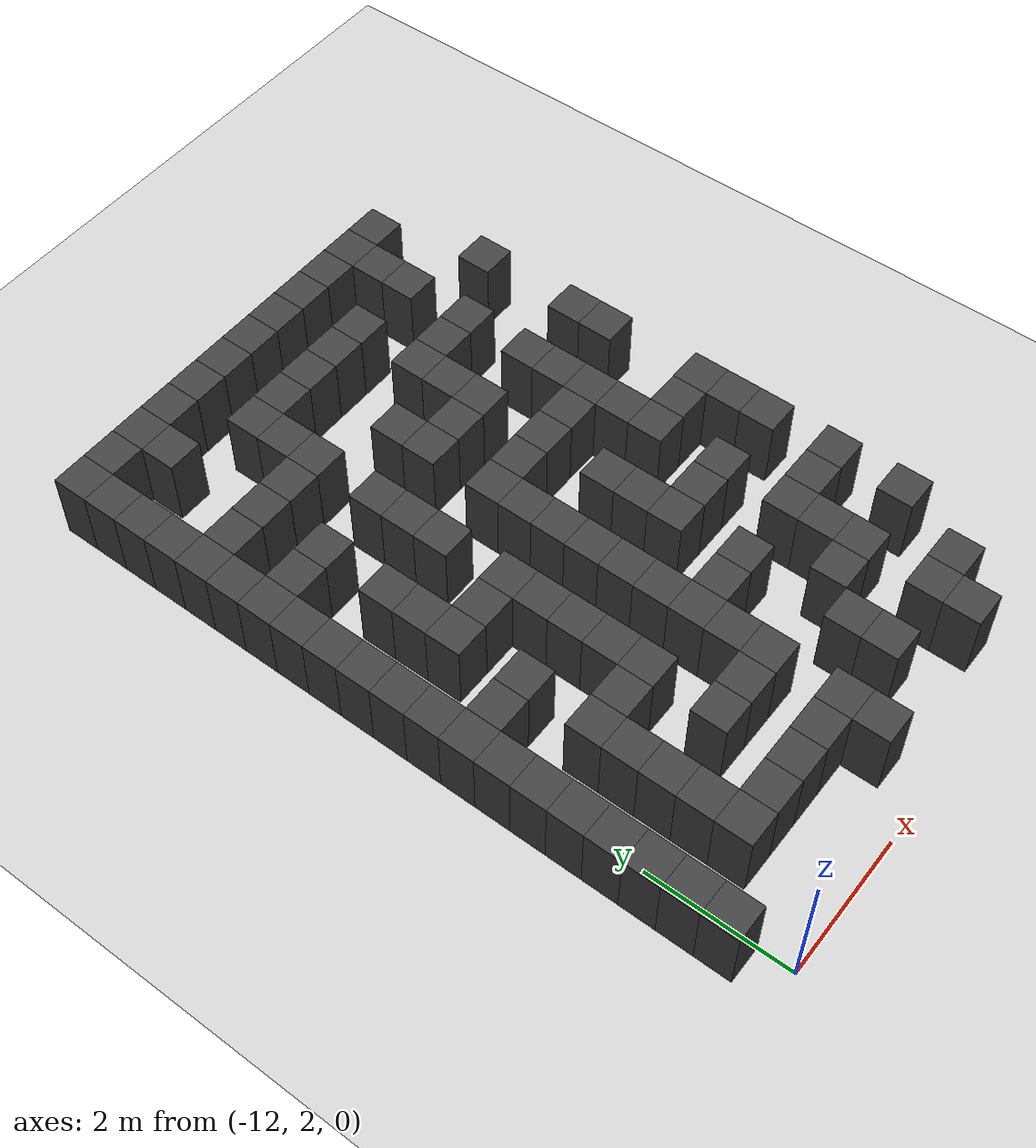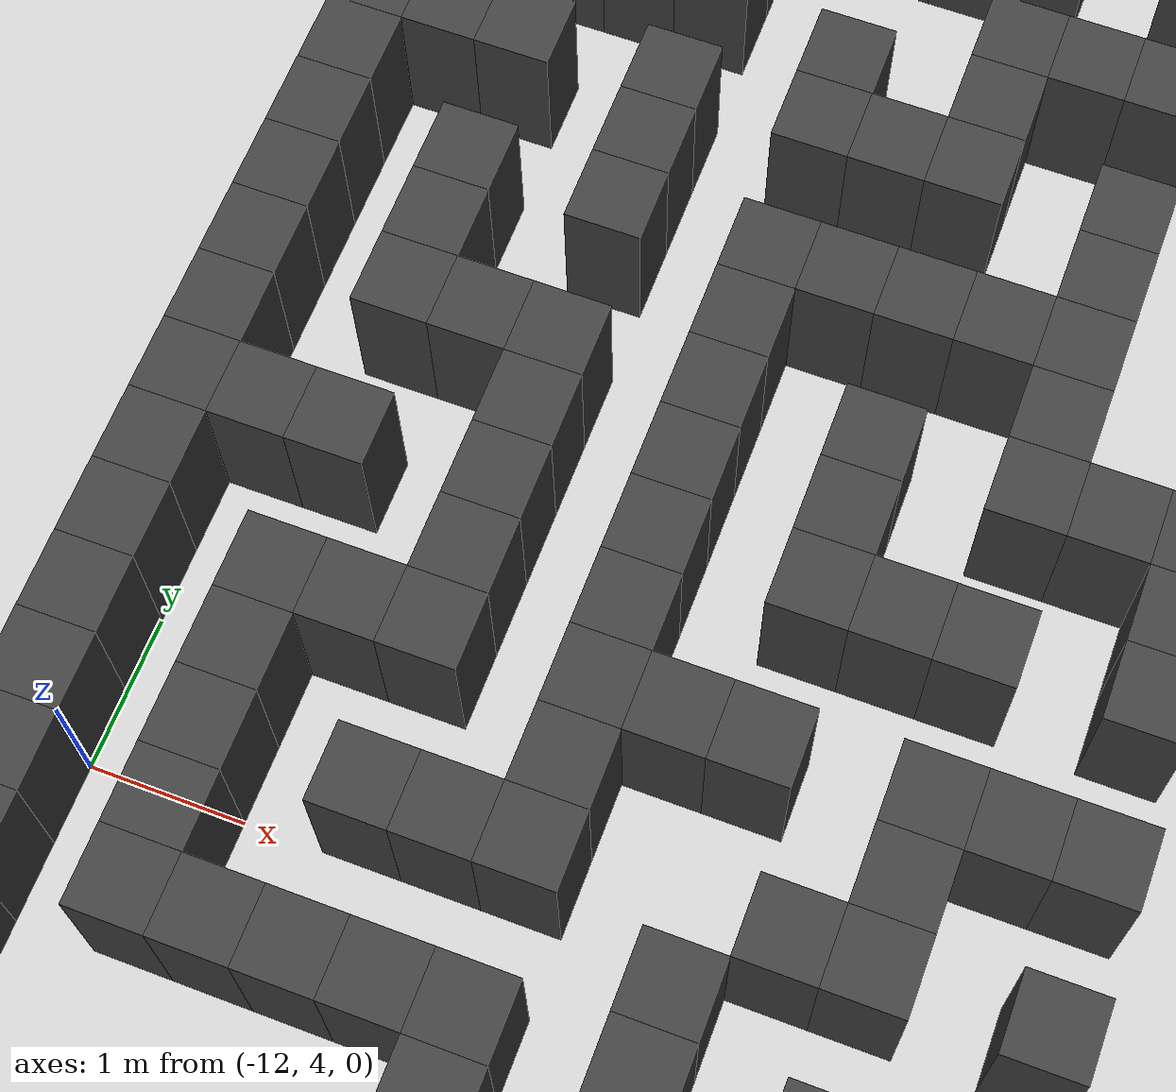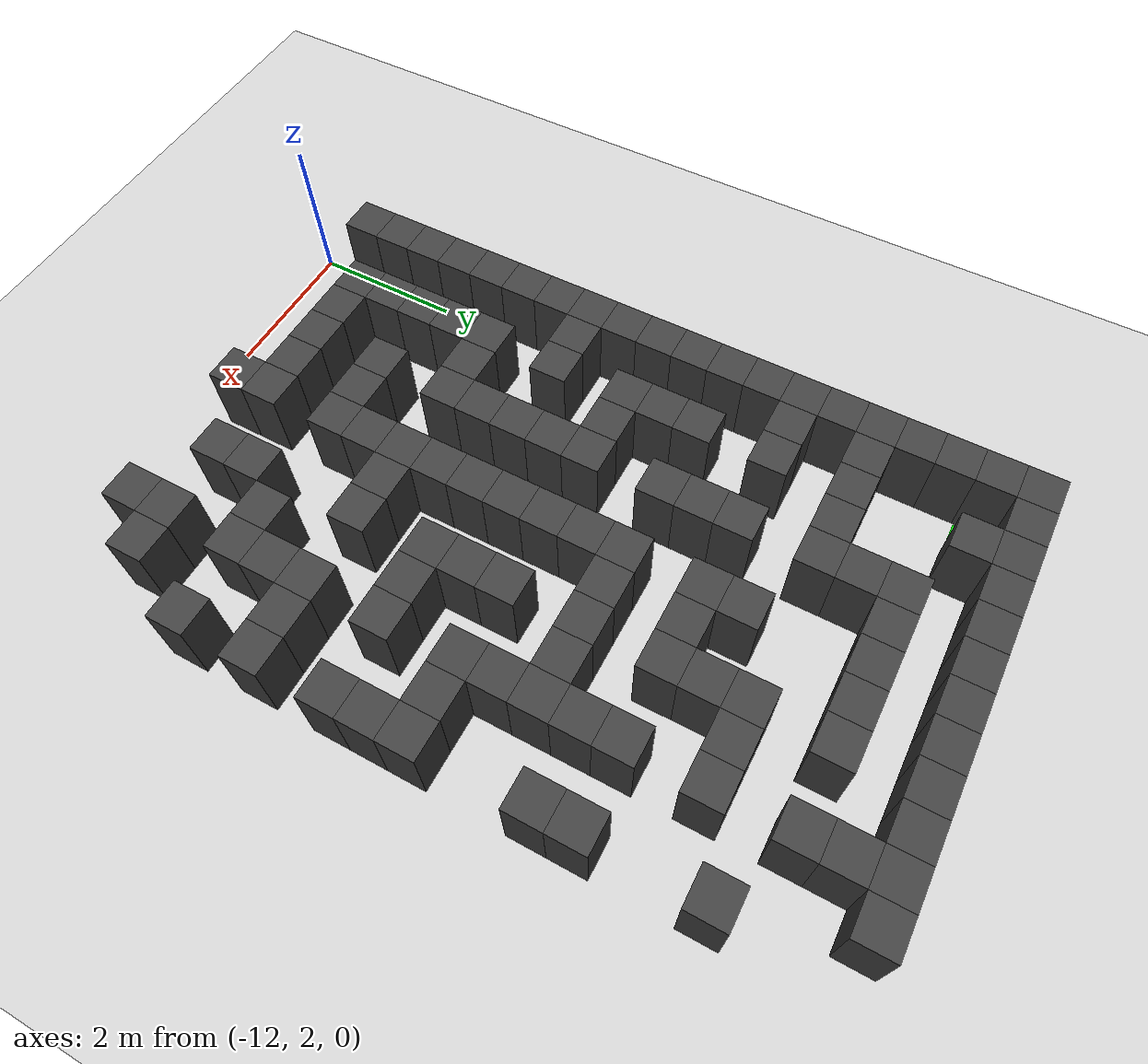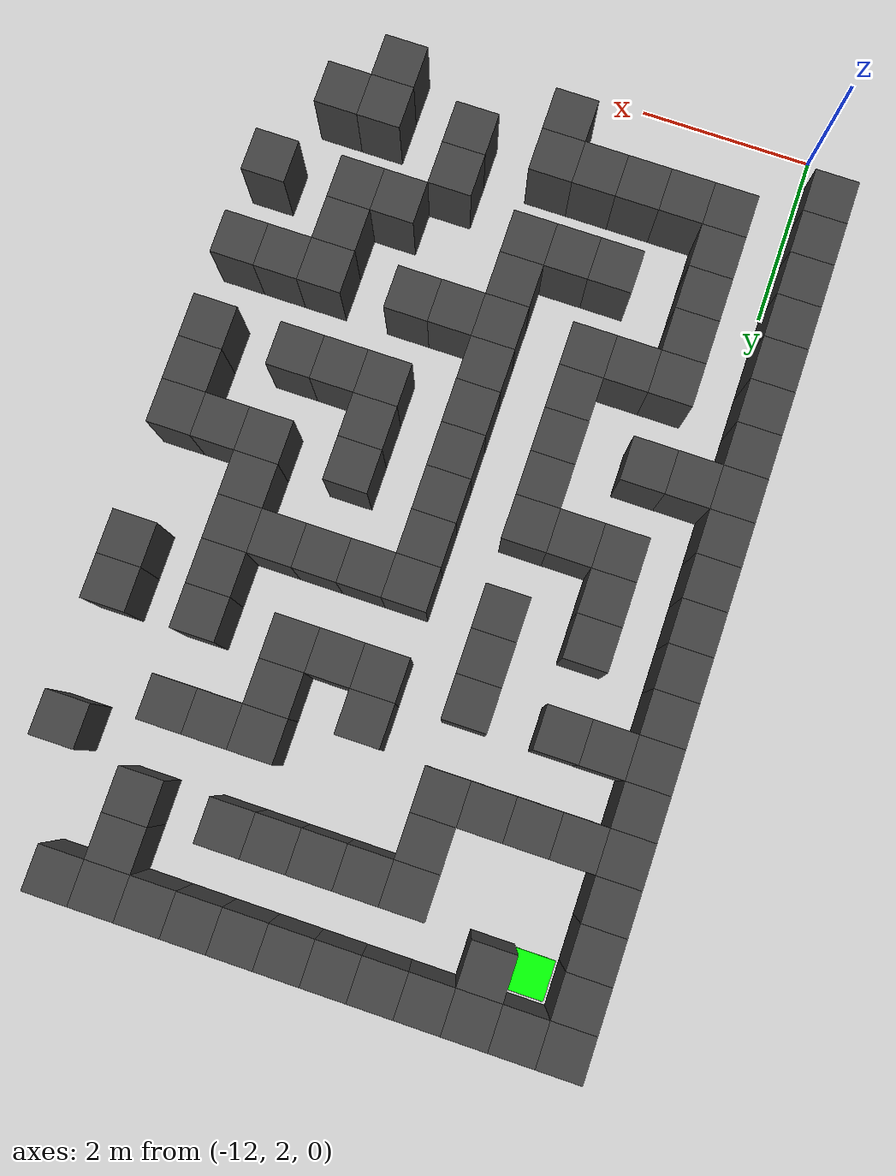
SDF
<sdf version="1.7">
 <world name="map_16603">
  <model name="ground_plane">
   <static>true</static>
   <link name="link">
    <collision name="collision">
     <geometry><plane><normal>0 0 1</normal><size>200 200</size></plane></geometry>
    </collision>
    <visual name="visual">
     <geometry><plane><normal>0 0 1</normal><size>200 200</size></plane></geometry>
     <material><ambient>0.8 0.8 0.8 1</ambient><diffuse>0.8 0.8 0.8 1</diffuse></material>
    </visual>
   </link>
  </model>
  <model name="maze_environment">
   <static>true</static>
   <link name="wall_0">
    <pose>-12.250 12.250 0.500 0 0 0</pose>
    <collision name="col"><geometry><box><size>0.5 0.5 1.0</size></box></geometry></collision>
    <visual name="vis">
     <geometry><box><size>0.5 0.5 1.0</size></box></geometry>
     <material><ambient>0.15 0.15 0.15 1</ambient><diffuse>0.25 0.25 0.25 1</diffuse></material>
    </visual>
   </link>
   <link name="wall_1">
    <pose>-11.750 12.250 0.500 0 0 0</pose>
    <collision name="col"><geometry><box><size>0.5 0.5 1.0</size></box></geometry></collision>
    <visual name="vis">
     <geometry><box><size>0.5 0.5 1.0</size></box></geometry>
     <material><ambient>0.15 0.15 0.15 1</ambient><diffuse>0.25 0.25 0.25 1</diffuse></material>
    </visual>
   </link>
   <link name="wall_2">
    <pose>-11.250 12.250 0.500 0 0 0</pose>
    <collision name="col"><geometry><box><size>0.5 0.5 1.0</size></box></geometry></collision>
    <visual name="vis">
     <geometry><box><size>0.5 0.5 1.0</size></box></geometry>
     <material><ambient>0.15 0.15 0.15 1</ambient><diffuse>0.25 0.25 0.25 1</diffuse></material>
    </visual>
   </link>
   <link name="wall_3">
    <pose>-10.750 12.250 0.500 0 0 0</pose>
    <collision name="col"><geometry><box><size>0.5 0.5 1.0</size></box></geometry></collision>
    <visual name="vis">
     <geometry><box><size>0.5 0.5 1.0</size></box></geometry>
     <material><ambient>0.15 0.15 0.15 1</ambient><diffuse>0.25 0.25 0.25 1</diffuse></material>
    </visual>
   </link>
   <link name="wall_4">
    <pose>-10.250 12.250 0.500 0 0 0</pose>
    <collision name="col"><geometry><box><size>0.5 0.5 1.0</size></box></geometry></collision>
    <visual name="vis">
     <geometry><box><size>0.5 0.5 1.0</size></box></geometry>
     <material><ambient>0.15 0.15 0.15 1</ambient><diffuse>0.25 0.25 0.25 1</diffuse></material>
    </visual>
   </link>
   <link name="wall_5">
    <pose>-9.750 12.250 0.500 0 0 0</pose>
    <collision name="col"><geometry><box><size>0.5 0.5 1.0</size></box></geometry></collision>
    <visual name="vis">
     <geometry><box><size>0.5 0.5 1.0</size></box></geometry>
     <material><ambient>0.15 0.15 0.15 1</ambient><diffuse>0.25 0.25 0.25 1</diffuse></material>
    </visual>
   </link>
   <link name="wall_6">
    <pose>-9.250 12.250 0.500 0 0 0</pose>
    <collision name="col"><geometry><box><size>0.5 0.5 1.0</size></box></geometry></collision>
    <visual name="vis">
     <geometry><box><size>0.5 0.5 1.0</size></box></geometry>
     <material><ambient>0.15 0.15 0.15 1</ambient><diffuse>0.25 0.25 0.25 1</diffuse></material>
    </visual>
   </link>
   <link name="wall_7">
    <pose>-8.750 12.250 0.500 0 0 0</pose>
    <collision name="col"><geometry><box><size>0.5 0.5 1.0</size></box></geometry></collision>
    <visual name="vis">
     <geometry><box><size>0.5 0.5 1.0</size></box></geometry>
     <material><ambient>0.15 0.15 0.15 1</ambient><diffuse>0.25 0.25 0.25 1</diffuse></material>
    </visual>
   </link>
   <link name="wall_8">
    <pose>-8.250 12.250 0.500 0 0 0</pose>
    <collision name="col"><geometry><box><size>0.5 0.5 1.0</size></box></geometry></collision>
    <visual name="vis">
     <geometry><box><size>0.5 0.5 1.0</size></box></geometry>
     <material><ambient>0.15 0.15 0.15 1</ambient><diffuse>0.25 0.25 0.25 1</diffuse></material>
    </visual>
   </link>
   <link name="wall_9">
    <pose>-7.750 12.250 0.500 0 0 0</pose>
    <collision name="col"><geometry><box><size>0.5 0.5 1.0</size></box></geometry></collision>
    <visual name="vis">
     <geometry><box><size>0.5 0.5 1.0</size></box></geometry>
     <material><ambient>0.15 0.15 0.15 1</ambient><diffuse>0.25 0.25 0.25 1</diffuse></material>
    </visual>
   </link>
   <link name="wall_10">
    <pose>-7.250 12.250 0.500 0 0 0</pose>
    <collision name="col"><geometry><box><size>0.5 0.5 1.0</size></box></geometry></collision>
    <visual name="vis">
     <geometry><box><size>0.5 0.5 1.0</size></box></geometry>
     <material><ambient>0.15 0.15 0.15 1</ambient><diffuse>0.25 0.25 0.25 1</diffuse></material>
    </visual>
   </link>
   <link name="wall_11">
    <pose>-6.750 12.250 0.500 0 0 0</pose>
    <collision name="col"><geometry><box><size>0.5 0.5 1.0</size></box></geometry></collision>
    <visual name="vis">
     <geometry><box><size>0.5 0.5 1.0</size></box></geometry>
     <material><ambient>0.15 0.15 0.15 1</ambient><diffuse>0.25 0.25 0.25 1</diffuse></material>
    </visual>
   </link>
   <link name="wall_50">
    <pose>-12.250 11.750 0.500 0 0 0</pose>
    <collision name="col"><geometry><box><size>0.5 0.5 1.0</size></box></geometry></collision>
    <visual name="vis">
     <geometry><box><size>0.5 0.5 1.0</size></box></geometry>
     <material><ambient>0.15 0.15 0.15 1</ambient><diffuse>0.25 0.25 0.25 1</diffuse></material>
    </visual>
   </link>
   <link name="wall_51">
    <pose>-11.250 11.750 0.500 0 0 0</pose>
    <collision name="col"><geometry><box><size>0.5 0.5 1.0</size></box></geometry></collision>
    <visual name="vis">
     <geometry><box><size>0.5 0.5 1.0</size></box></geometry>
     <material><ambient>0.15 0.15 0.15 1</ambient><diffuse>0.25 0.25 0.25 1</diffuse></material>
    </visual>
   </link>
   <link name="wall_52">
    <pose>-7.250 11.750 0.500 0 0 0</pose>
    <collision name="col"><geometry><box><size>0.5 0.5 1.0</size></box></geometry></collision>
    <visual name="vis">
     <geometry><box><size>0.5 0.5 1.0</size></box></geometry>
     <material><ambient>0.15 0.15 0.15 1</ambient><diffuse>0.25 0.25 0.25 1</diffuse></material>
    </visual>
   </link>
   <link name="wall_58">
    <pose>-12.250 11.250 0.500 0 0 0</pose>
    <collision name="col"><geometry><box><size>0.5 0.5 1.0</size></box></geometry></collision>
    <visual name="vis">
     <geometry><box><size>0.5 0.5 1.0</size></box></geometry>
     <material><ambient>0.15 0.15 0.15 1</ambient><diffuse>0.25 0.25 0.25 1</diffuse></material>
    </visual>
   </link>
   <link name="wall_59">
    <pose>-10.250 11.250 0.500 0 0 0</pose>
    <collision name="col"><geometry><box><size>0.5 0.5 1.0</size></box></geometry></collision>
    <visual name="vis">
     <geometry><box><size>0.5 0.5 1.0</size></box></geometry>
     <material><ambient>0.15 0.15 0.15 1</ambient><diffuse>0.25 0.25 0.25 1</diffuse></material>
    </visual>
   </link>
   <link name="wall_60">
    <pose>-9.750 11.250 0.500 0 0 0</pose>
    <collision name="col"><geometry><box><size>0.5 0.5 1.0</size></box></geometry></collision>
    <visual name="vis">
     <geometry><box><size>0.5 0.5 1.0</size></box></geometry>
     <material><ambient>0.15 0.15 0.15 1</ambient><diffuse>0.25 0.25 0.25 1</diffuse></material>
    </visual>
   </link>
   <link name="wall_61">
    <pose>-9.250 11.250 0.500 0 0 0</pose>
    <collision name="col"><geometry><box><size>0.5 0.5 1.0</size></box></geometry></collision>
    <visual name="vis">
     <geometry><box><size>0.5 0.5 1.0</size></box></geometry>
     <material><ambient>0.15 0.15 0.15 1</ambient><diffuse>0.25 0.25 0.25 1</diffuse></material>
    </visual>
   </link>
   <link name="wall_62">
    <pose>-8.750 11.250 0.500 0 0 0</pose>
    <collision name="col"><geometry><box><size>0.5 0.5 1.0</size></box></geometry></collision>
    <visual name="vis">
     <geometry><box><size>0.5 0.5 1.0</size></box></geometry>
     <material><ambient>0.15 0.15 0.15 1</ambient><diffuse>0.25 0.25 0.25 1</diffuse></material>
    </visual>
   </link>
   <link name="wall_63">
    <pose>-8.250 11.250 0.500 0 0 0</pose>
    <collision name="col"><geometry><box><size>0.5 0.5 1.0</size></box></geometry></collision>
    <visual name="vis">
     <geometry><box><size>0.5 0.5 1.0</size></box></geometry>
     <material><ambient>0.15 0.15 0.15 1</ambient><diffuse>0.25 0.25 0.25 1</diffuse></material>
    </visual>
   </link>
   <link name="wall_64">
    <pose>-7.250 11.250 0.500 0 0 0</pose>
    <collision name="col"><geometry><box><size>0.5 0.5 1.0</size></box></geometry></collision>
    <visual name="vis">
     <geometry><box><size>0.5 0.5 1.0</size></box></geometry>
     <material><ambient>0.15 0.15 0.15 1</ambient><diffuse>0.25 0.25 0.25 1</diffuse></material>
    </visual>
   </link>
   <link name="wall_94">
    <pose>-12.250 10.750 0.500 0 0 0</pose>
    <collision name="col"><geometry><box><size>0.5 0.5 1.0</size></box></geometry></collision>
    <visual name="vis">
     <geometry><box><size>0.5 0.5 1.0</size></box></geometry>
     <material><ambient>0.15 0.15 0.15 1</ambient><diffuse>0.25 0.25 0.25 1</diffuse></material>
    </visual>
   </link>
   <link name="wall_95">
    <pose>-10.250 10.750 0.500 0 0 0</pose>
    <collision name="col"><geometry><box><size>0.5 0.5 1.0</size></box></geometry></collision>
    <visual name="vis">
     <geometry><box><size>0.5 0.5 1.0</size></box></geometry>
     <material><ambient>0.15 0.15 0.15 1</ambient><diffuse>0.25 0.25 0.25 1</diffuse></material>
    </visual>
   </link>
   <link name="wall_96">
    <pose>-6.250 10.750 0.500 0 0 0</pose>
    <collision name="col"><geometry><box><size>0.5 0.5 1.0</size></box></geometry></collision>
    <visual name="vis">
     <geometry><box><size>0.5 0.5 1.0</size></box></geometry>
     <material><ambient>0.15 0.15 0.15 1</ambient><diffuse>0.25 0.25 0.25 1</diffuse></material>
    </visual>
   </link>
   <link name="wall_106">
    <pose>-12.250 10.250 0.500 0 0 0</pose>
    <collision name="col"><geometry><box><size>0.5 0.5 1.0</size></box></geometry></collision>
    <visual name="vis">
     <geometry><box><size>0.5 0.5 1.0</size></box></geometry>
     <material><ambient>0.15 0.15 0.15 1</ambient><diffuse>0.25 0.25 0.25 1</diffuse></material>
    </visual>
   </link>
   <link name="wall_107">
    <pose>-11.750 10.250 0.500 0 0 0</pose>
    <collision name="col"><geometry><box><size>0.5 0.5 1.0</size></box></geometry></collision>
    <visual name="vis">
     <geometry><box><size>0.5 0.5 1.0</size></box></geometry>
     <material><ambient>0.15 0.15 0.15 1</ambient><diffuse>0.25 0.25 0.25 1</diffuse></material>
    </visual>
   </link>
   <link name="wall_108">
    <pose>-11.250 10.250 0.500 0 0 0</pose>
    <collision name="col"><geometry><box><size>0.5 0.5 1.0</size></box></geometry></collision>
    <visual name="vis">
     <geometry><box><size>0.5 0.5 1.0</size></box></geometry>
     <material><ambient>0.15 0.15 0.15 1</ambient><diffuse>0.25 0.25 0.25 1</diffuse></material>
    </visual>
   </link>
   <link name="wall_109">
    <pose>-10.750 10.250 0.500 0 0 0</pose>
    <collision name="col"><geometry><box><size>0.5 0.5 1.0</size></box></geometry></collision>
    <visual name="vis">
     <geometry><box><size>0.5 0.5 1.0</size></box></geometry>
     <material><ambient>0.15 0.15 0.15 1</ambient><diffuse>0.25 0.25 0.25 1</diffuse></material>
    </visual>
   </link>
   <link name="wall_110">
    <pose>-10.250 10.250 0.500 0 0 0</pose>
    <collision name="col"><geometry><box><size>0.5 0.5 1.0</size></box></geometry></collision>
    <visual name="vis">
     <geometry><box><size>0.5 0.5 1.0</size></box></geometry>
     <material><ambient>0.15 0.15 0.15 1</ambient><diffuse>0.25 0.25 0.25 1</diffuse></material>
    </visual>
   </link>
   <link name="wall_111">
    <pose>-8.250 10.250 0.500 0 0 0</pose>
    <collision name="col"><geometry><box><size>0.5 0.5 1.0</size></box></geometry></collision>
    <visual name="vis">
     <geometry><box><size>0.5 0.5 1.0</size></box></geometry>
     <material><ambient>0.15 0.15 0.15 1</ambient><diffuse>0.25 0.25 0.25 1</diffuse></material>
    </visual>
   </link>
   <link name="wall_112">
    <pose>-7.750 10.250 0.500 0 0 0</pose>
    <collision name="col"><geometry><box><size>0.5 0.5 1.0</size></box></geometry></collision>
    <visual name="vis">
     <geometry><box><size>0.5 0.5 1.0</size></box></geometry>
     <material><ambient>0.15 0.15 0.15 1</ambient><diffuse>0.25 0.25 0.25 1</diffuse></material>
    </visual>
   </link>
   <link name="wall_113">
    <pose>-7.250 10.250 0.500 0 0 0</pose>
    <collision name="col"><geometry><box><size>0.5 0.5 1.0</size></box></geometry></collision>
    <visual name="vis">
     <geometry><box><size>0.5 0.5 1.0</size></box></geometry>
     <material><ambient>0.15 0.15 0.15 1</ambient><diffuse>0.25 0.25 0.25 1</diffuse></material>
    </visual>
   </link>
   <link name="wall_138">
    <pose>-12.250 9.750 0.500 0 0 0</pose>
    <collision name="col"><geometry><box><size>0.5 0.5 1.0</size></box></geometry></collision>
    <visual name="vis">
     <geometry><box><size>0.5 0.5 1.0</size></box></geometry>
     <material><ambient>0.15 0.15 0.15 1</ambient><diffuse>0.25 0.25 0.25 1</diffuse></material>
    </visual>
   </link>
   <link name="wall_139">
    <pose>-9.250 9.750 0.500 0 0 0</pose>
    <collision name="col"><geometry><box><size>0.5 0.5 1.0</size></box></geometry></collision>
    <visual name="vis">
     <geometry><box><size>0.5 0.5 1.0</size></box></geometry>
     <material><ambient>0.15 0.15 0.15 1</ambient><diffuse>0.25 0.25 0.25 1</diffuse></material>
    </visual>
   </link>
   <link name="wall_140">
    <pose>-8.250 9.750 0.500 0 0 0</pose>
    <collision name="col"><geometry><box><size>0.5 0.5 1.0</size></box></geometry></collision>
    <visual name="vis">
     <geometry><box><size>0.5 0.5 1.0</size></box></geometry>
     <material><ambient>0.15 0.15 0.15 1</ambient><diffuse>0.25 0.25 0.25 1</diffuse></material>
    </visual>
   </link>
   <link name="wall_152">
    <pose>-12.250 9.250 0.500 0 0 0</pose>
    <collision name="col"><geometry><box><size>0.5 0.5 1.0</size></box></geometry></collision>
    <visual name="vis">
     <geometry><box><size>0.5 0.5 1.0</size></box></geometry>
     <material><ambient>0.15 0.15 0.15 1</ambient><diffuse>0.25 0.25 0.25 1</diffuse></material>
    </visual>
   </link>
   <link name="wall_153">
    <pose>-11.750 9.250 0.500 0 0 0</pose>
    <collision name="col"><geometry><box><size>0.5 0.5 1.0</size></box></geometry></collision>
    <visual name="vis">
     <geometry><box><size>0.5 0.5 1.0</size></box></geometry>
     <material><ambient>0.15 0.15 0.15 1</ambient><diffuse>0.25 0.25 0.25 1</diffuse></material>
    </visual>
   </link>
   <link name="wall_154">
    <pose>-11.250 9.250 0.500 0 0 0</pose>
    <collision name="col"><geometry><box><size>0.5 0.5 1.0</size></box></geometry></collision>
    <visual name="vis">
     <geometry><box><size>0.5 0.5 1.0</size></box></geometry>
     <material><ambient>0.15 0.15 0.15 1</ambient><diffuse>0.25 0.25 0.25 1</diffuse></material>
    </visual>
   </link>
   <link name="wall_155">
    <pose>-10.250 9.250 0.500 0 0 0</pose>
    <collision name="col"><geometry><box><size>0.5 0.5 1.0</size></box></geometry></collision>
    <visual name="vis">
     <geometry><box><size>0.5 0.5 1.0</size></box></geometry>
     <material><ambient>0.15 0.15 0.15 1</ambient><diffuse>0.25 0.25 0.25 1</diffuse></material>
    </visual>
   </link>
   <link name="wall_156">
    <pose>-9.250 9.250 0.500 0 0 0</pose>
    <collision name="col"><geometry><box><size>0.5 0.5 1.0</size></box></geometry></collision>
    <visual name="vis">
     <geometry><box><size>0.5 0.5 1.0</size></box></geometry>
     <material><ambient>0.15 0.15 0.15 1</ambient><diffuse>0.25 0.25 0.25 1</diffuse></material>
    </visual>
   </link>
   <link name="wall_157">
    <pose>-8.750 9.250 0.500 0 0 0</pose>
    <collision name="col"><geometry><box><size>0.5 0.5 1.0</size></box></geometry></collision>
    <visual name="vis">
     <geometry><box><size>0.5 0.5 1.0</size></box></geometry>
     <material><ambient>0.15 0.15 0.15 1</ambient><diffuse>0.25 0.25 0.25 1</diffuse></material>
    </visual>
   </link>
   <link name="wall_158">
    <pose>-8.250 9.250 0.500 0 0 0</pose>
    <collision name="col"><geometry><box><size>0.5 0.5 1.0</size></box></geometry></collision>
    <visual name="vis">
     <geometry><box><size>0.5 0.5 1.0</size></box></geometry>
     <material><ambient>0.15 0.15 0.15 1</ambient><diffuse>0.25 0.25 0.25 1</diffuse></material>
    </visual>
   </link>
   <link name="wall_159">
    <pose>-7.250 9.250 0.500 0 0 0</pose>
    <collision name="col"><geometry><box><size>0.5 0.5 1.0</size></box></geometry></collision>
    <visual name="vis">
     <geometry><box><size>0.5 0.5 1.0</size></box></geometry>
     <material><ambient>0.15 0.15 0.15 1</ambient><diffuse>0.25 0.25 0.25 1</diffuse></material>
    </visual>
   </link>
   <link name="wall_160">
    <pose>-6.250 9.250 0.500 0 0 0</pose>
    <collision name="col"><geometry><box><size>0.5 0.5 1.0</size></box></geometry></collision>
    <visual name="vis">
     <geometry><box><size>0.5 0.5 1.0</size></box></geometry>
     <material><ambient>0.15 0.15 0.15 1</ambient><diffuse>0.25 0.25 0.25 1</diffuse></material>
    </visual>
   </link>
   <link name="wall_184">
    <pose>-12.250 8.750 0.500 0 0 0</pose>
    <collision name="col"><geometry><box><size>0.5 0.5 1.0</size></box></geometry></collision>
    <visual name="vis">
     <geometry><box><size>0.5 0.5 1.0</size></box></geometry>
     <material><ambient>0.15 0.15 0.15 1</ambient><diffuse>0.25 0.25 0.25 1</diffuse></material>
    </visual>
   </link>
   <link name="wall_185">
    <pose>-10.250 8.750 0.500 0 0 0</pose>
    <collision name="col"><geometry><box><size>0.5 0.5 1.0</size></box></geometry></collision>
    <visual name="vis">
     <geometry><box><size>0.5 0.5 1.0</size></box></geometry>
     <material><ambient>0.15 0.15 0.15 1</ambient><diffuse>0.25 0.25 0.25 1</diffuse></material>
    </visual>
   </link>
   <link name="wall_186">
    <pose>-7.250 8.750 0.500 0 0 0</pose>
    <collision name="col"><geometry><box><size>0.5 0.5 1.0</size></box></geometry></collision>
    <visual name="vis">
     <geometry><box><size>0.5 0.5 1.0</size></box></geometry>
     <material><ambient>0.15 0.15 0.15 1</ambient><diffuse>0.25 0.25 0.25 1</diffuse></material>
    </visual>
   </link>
   <link name="wall_187">
    <pose>-6.250 8.750 0.500 0 0 0</pose>
    <collision name="col"><geometry><box><size>0.5 0.5 1.0</size></box></geometry></collision>
    <visual name="vis">
     <geometry><box><size>0.5 0.5 1.0</size></box></geometry>
     <material><ambient>0.15 0.15 0.15 1</ambient><diffuse>0.25 0.25 0.25 1</diffuse></material>
    </visual>
   </link>
   <link name="wall_201">
    <pose>-12.250 8.250 0.500 0 0 0</pose>
    <collision name="col"><geometry><box><size>0.5 0.5 1.0</size></box></geometry></collision>
    <visual name="vis">
     <geometry><box><size>0.5 0.5 1.0</size></box></geometry>
     <material><ambient>0.15 0.15 0.15 1</ambient><diffuse>0.25 0.25 0.25 1</diffuse></material>
    </visual>
   </link>
   <link name="wall_202">
    <pose>-11.250 8.250 0.500 0 0 0</pose>
    <collision name="col"><geometry><box><size>0.5 0.5 1.0</size></box></geometry></collision>
    <visual name="vis">
     <geometry><box><size>0.5 0.5 1.0</size></box></geometry>
     <material><ambient>0.15 0.15 0.15 1</ambient><diffuse>0.25 0.25 0.25 1</diffuse></material>
    </visual>
   </link>
   <link name="wall_203">
    <pose>-10.250 8.250 0.500 0 0 0</pose>
    <collision name="col"><geometry><box><size>0.5 0.5 1.0</size></box></geometry></collision>
    <visual name="vis">
     <geometry><box><size>0.5 0.5 1.0</size></box></geometry>
     <material><ambient>0.15 0.15 0.15 1</ambient><diffuse>0.25 0.25 0.25 1</diffuse></material>
    </visual>
   </link>
   <link name="wall_204">
    <pose>-9.250 8.250 0.500 0 0 0</pose>
    <collision name="col"><geometry><box><size>0.5 0.5 1.0</size></box></geometry></collision>
    <visual name="vis">
     <geometry><box><size>0.5 0.5 1.0</size></box></geometry>
     <material><ambient>0.15 0.15 0.15 1</ambient><diffuse>0.25 0.25 0.25 1</diffuse></material>
    </visual>
   </link>
   <link name="wall_205">
    <pose>-8.750 8.250 0.500 0 0 0</pose>
    <collision name="col"><geometry><box><size>0.5 0.5 1.0</size></box></geometry></collision>
    <visual name="vis">
     <geometry><box><size>0.5 0.5 1.0</size></box></geometry>
     <material><ambient>0.15 0.15 0.15 1</ambient><diffuse>0.25 0.25 0.25 1</diffuse></material>
    </visual>
   </link>
   <link name="wall_206">
    <pose>-8.250 8.250 0.500 0 0 0</pose>
    <collision name="col"><geometry><box><size>0.5 0.5 1.0</size></box></geometry></collision>
    <visual name="vis">
     <geometry><box><size>0.5 0.5 1.0</size></box></geometry>
     <material><ambient>0.15 0.15 0.15 1</ambient><diffuse>0.25 0.25 0.25 1</diffuse></material>
    </visual>
   </link>
   <link name="wall_207">
    <pose>-7.750 8.250 0.500 0 0 0</pose>
    <collision name="col"><geometry><box><size>0.5 0.5 1.0</size></box></geometry></collision>
    <visual name="vis">
     <geometry><box><size>0.5 0.5 1.0</size></box></geometry>
     <material><ambient>0.15 0.15 0.15 1</ambient><diffuse>0.25 0.25 0.25 1</diffuse></material>
    </visual>
   </link>
   <link name="wall_208">
    <pose>-7.250 8.250 0.500 0 0 0</pose>
    <collision name="col"><geometry><box><size>0.5 0.5 1.0</size></box></geometry></collision>
    <visual name="vis">
     <geometry><box><size>0.5 0.5 1.0</size></box></geometry>
     <material><ambient>0.15 0.15 0.15 1</ambient><diffuse>0.25 0.25 0.25 1</diffuse></material>
    </visual>
   </link>
   <link name="wall_230">
    <pose>-12.250 7.750 0.500 0 0 0</pose>
    <collision name="col"><geometry><box><size>0.5 0.5 1.0</size></box></geometry></collision>
    <visual name="vis">
     <geometry><box><size>0.5 0.5 1.0</size></box></geometry>
     <material><ambient>0.15 0.15 0.15 1</ambient><diffuse>0.25 0.25 0.25 1</diffuse></material>
    </visual>
   </link>
   <link name="wall_231">
    <pose>-11.250 7.750 0.500 0 0 0</pose>
    <collision name="col"><geometry><box><size>0.5 0.5 1.0</size></box></geometry></collision>
    <visual name="vis">
     <geometry><box><size>0.5 0.5 1.0</size></box></geometry>
     <material><ambient>0.15 0.15 0.15 1</ambient><diffuse>0.25 0.25 0.25 1</diffuse></material>
    </visual>
   </link>
   <link name="wall_232">
    <pose>-9.250 7.750 0.500 0 0 0</pose>
    <collision name="col"><geometry><box><size>0.5 0.5 1.0</size></box></geometry></collision>
    <visual name="vis">
     <geometry><box><size>0.5 0.5 1.0</size></box></geometry>
     <material><ambient>0.15 0.15 0.15 1</ambient><diffuse>0.25 0.25 0.25 1</diffuse></material>
    </visual>
   </link>
   <link name="wall_233">
    <pose>-7.250 7.750 0.500 0 0 0</pose>
    <collision name="col"><geometry><box><size>0.5 0.5 1.0</size></box></geometry></collision>
    <visual name="vis">
     <geometry><box><size>0.5 0.5 1.0</size></box></geometry>
     <material><ambient>0.15 0.15 0.15 1</ambient><diffuse>0.25 0.25 0.25 1</diffuse></material>
    </visual>
   </link>
   <link name="wall_247">
    <pose>-12.250 7.250 0.500 0 0 0</pose>
    <collision name="col"><geometry><box><size>0.5 0.5 1.0</size></box></geometry></collision>
    <visual name="vis">
     <geometry><box><size>0.5 0.5 1.0</size></box></geometry>
     <material><ambient>0.15 0.15 0.15 1</ambient><diffuse>0.25 0.25 0.25 1</diffuse></material>
    </visual>
   </link>
   <link name="wall_248">
    <pose>-11.250 7.250 0.500 0 0 0</pose>
    <collision name="col"><geometry><box><size>0.5 0.5 1.0</size></box></geometry></collision>
    <visual name="vis">
     <geometry><box><size>0.5 0.5 1.0</size></box></geometry>
     <material><ambient>0.15 0.15 0.15 1</ambient><diffuse>0.25 0.25 0.25 1</diffuse></material>
    </visual>
   </link>
   <link name="wall_249">
    <pose>-10.750 7.250 0.500 0 0 0</pose>
    <collision name="col"><geometry><box><size>0.5 0.5 1.0</size></box></geometry></collision>
    <visual name="vis">
     <geometry><box><size>0.5 0.5 1.0</size></box></geometry>
     <material><ambient>0.15 0.15 0.15 1</ambient><diffuse>0.25 0.25 0.25 1</diffuse></material>
    </visual>
   </link>
   <link name="wall_250">
    <pose>-10.250 7.250 0.500 0 0 0</pose>
    <collision name="col"><geometry><box><size>0.5 0.5 1.0</size></box></geometry></collision>
    <visual name="vis">
     <geometry><box><size>0.5 0.5 1.0</size></box></geometry>
     <material><ambient>0.15 0.15 0.15 1</ambient><diffuse>0.25 0.25 0.25 1</diffuse></material>
    </visual>
   </link>
   <link name="wall_251">
    <pose>-9.250 7.250 0.500 0 0 0</pose>
    <collision name="col"><geometry><box><size>0.5 0.5 1.0</size></box></geometry></collision>
    <visual name="vis">
     <geometry><box><size>0.5 0.5 1.0</size></box></geometry>
     <material><ambient>0.15 0.15 0.15 1</ambient><diffuse>0.25 0.25 0.25 1</diffuse></material>
    </visual>
   </link>
   <link name="wall_252">
    <pose>-8.250 7.250 0.500 0 0 0</pose>
    <collision name="col"><geometry><box><size>0.5 0.5 1.0</size></box></geometry></collision>
    <visual name="vis">
     <geometry><box><size>0.5 0.5 1.0</size></box></geometry>
     <material><ambient>0.15 0.15 0.15 1</ambient><diffuse>0.25 0.25 0.25 1</diffuse></material>
    </visual>
   </link>
   <link name="wall_253">
    <pose>-7.250 7.250 0.500 0 0 0</pose>
    <collision name="col"><geometry><box><size>0.5 0.5 1.0</size></box></geometry></collision>
    <visual name="vis">
     <geometry><box><size>0.5 0.5 1.0</size></box></geometry>
     <material><ambient>0.15 0.15 0.15 1</ambient><diffuse>0.25 0.25 0.25 1</diffuse></material>
    </visual>
   </link>
   <link name="wall_254">
    <pose>-6.750 7.250 0.500 0 0 0</pose>
    <collision name="col"><geometry><box><size>0.5 0.5 1.0</size></box></geometry></collision>
    <visual name="vis">
     <geometry><box><size>0.5 0.5 1.0</size></box></geometry>
     <material><ambient>0.15 0.15 0.15 1</ambient><diffuse>0.25 0.25 0.25 1</diffuse></material>
    </visual>
   </link>
   <link name="wall_255">
    <pose>-6.250 7.250 0.500 0 0 0</pose>
    <collision name="col"><geometry><box><size>0.5 0.5 1.0</size></box></geometry></collision>
    <visual name="vis">
     <geometry><box><size>0.5 0.5 1.0</size></box></geometry>
     <material><ambient>0.15 0.15 0.15 1</ambient><diffuse>0.25 0.25 0.25 1</diffuse></material>
    </visual>
   </link>
   <link name="wall_284">
    <pose>-12.250 6.750 0.500 0 0 0</pose>
    <collision name="col"><geometry><box><size>0.5 0.5 1.0</size></box></geometry></collision>
    <visual name="vis">
     <geometry><box><size>0.5 0.5 1.0</size></box></geometry>
     <material><ambient>0.15 0.15 0.15 1</ambient><diffuse>0.25 0.25 0.25 1</diffuse></material>
    </visual>
   </link>
   <link name="wall_285">
    <pose>-10.250 6.750 0.500 0 0 0</pose>
    <collision name="col"><geometry><box><size>0.5 0.5 1.0</size></box></geometry></collision>
    <visual name="vis">
     <geometry><box><size>0.5 0.5 1.0</size></box></geometry>
     <material><ambient>0.15 0.15 0.15 1</ambient><diffuse>0.25 0.25 0.25 1</diffuse></material>
    </visual>
   </link>
   <link name="wall_286">
    <pose>-9.250 6.750 0.500 0 0 0</pose>
    <collision name="col"><geometry><box><size>0.5 0.5 1.0</size></box></geometry></collision>
    <visual name="vis">
     <geometry><box><size>0.5 0.5 1.0</size></box></geometry>
     <material><ambient>0.15 0.15 0.15 1</ambient><diffuse>0.25 0.25 0.25 1</diffuse></material>
    </visual>
   </link>
   <link name="wall_287">
    <pose>-8.250 6.750 0.500 0 0 0</pose>
    <collision name="col"><geometry><box><size>0.5 0.5 1.0</size></box></geometry></collision>
    <visual name="vis">
     <geometry><box><size>0.5 0.5 1.0</size></box></geometry>
     <material><ambient>0.15 0.15 0.15 1</ambient><diffuse>0.25 0.25 0.25 1</diffuse></material>
    </visual>
   </link>
   <link name="wall_288">
    <pose>-6.250 6.750 0.500 0 0 0</pose>
    <collision name="col"><geometry><box><size>0.5 0.5 1.0</size></box></geometry></collision>
    <visual name="vis">
     <geometry><box><size>0.5 0.5 1.0</size></box></geometry>
     <material><ambient>0.15 0.15 0.15 1</ambient><diffuse>0.25 0.25 0.25 1</diffuse></material>
    </visual>
   </link>
   <link name="wall_299">
    <pose>-12.250 6.250 0.500 0 0 0</pose>
    <collision name="col"><geometry><box><size>0.5 0.5 1.0</size></box></geometry></collision>
    <visual name="vis">
     <geometry><box><size>0.5 0.5 1.0</size></box></geometry>
     <material><ambient>0.15 0.15 0.15 1</ambient><diffuse>0.25 0.25 0.25 1</diffuse></material>
    </visual>
   </link>
   <link name="wall_300">
    <pose>-11.750 6.250 0.500 0 0 0</pose>
    <collision name="col"><geometry><box><size>0.5 0.5 1.0</size></box></geometry></collision>
    <visual name="vis">
     <geometry><box><size>0.5 0.5 1.0</size></box></geometry>
     <material><ambient>0.15 0.15 0.15 1</ambient><diffuse>0.25 0.25 0.25 1</diffuse></material>
    </visual>
   </link>
   <link name="wall_301">
    <pose>-11.250 6.250 0.500 0 0 0</pose>
    <collision name="col"><geometry><box><size>0.5 0.5 1.0</size></box></geometry></collision>
    <visual name="vis">
     <geometry><box><size>0.5 0.5 1.0</size></box></geometry>
     <material><ambient>0.15 0.15 0.15 1</ambient><diffuse>0.25 0.25 0.25 1</diffuse></material>
    </visual>
   </link>
   <link name="wall_302">
    <pose>-10.250 6.250 0.500 0 0 0</pose>
    <collision name="col"><geometry><box><size>0.5 0.5 1.0</size></box></geometry></collision>
    <visual name="vis">
     <geometry><box><size>0.5 0.5 1.0</size></box></geometry>
     <material><ambient>0.15 0.15 0.15 1</ambient><diffuse>0.25 0.25 0.25 1</diffuse></material>
    </visual>
   </link>
   <link name="wall_303">
    <pose>-9.250 6.250 0.500 0 0 0</pose>
    <collision name="col"><geometry><box><size>0.5 0.5 1.0</size></box></geometry></collision>
    <visual name="vis">
     <geometry><box><size>0.5 0.5 1.0</size></box></geometry>
     <material><ambient>0.15 0.15 0.15 1</ambient><diffuse>0.25 0.25 0.25 1</diffuse></material>
    </visual>
   </link>
   <link name="wall_304">
    <pose>-8.250 6.250 0.500 0 0 0</pose>
    <collision name="col"><geometry><box><size>0.5 0.5 1.0</size></box></geometry></collision>
    <visual name="vis">
     <geometry><box><size>0.5 0.5 1.0</size></box></geometry>
     <material><ambient>0.15 0.15 0.15 1</ambient><diffuse>0.25 0.25 0.25 1</diffuse></material>
    </visual>
   </link>
   <link name="wall_305">
    <pose>-7.750 6.250 0.500 0 0 0</pose>
    <collision name="col"><geometry><box><size>0.5 0.5 1.0</size></box></geometry></collision>
    <visual name="vis">
     <geometry><box><size>0.5 0.5 1.0</size></box></geometry>
     <material><ambient>0.15 0.15 0.15 1</ambient><diffuse>0.25 0.25 0.25 1</diffuse></material>
    </visual>
   </link>
   <link name="wall_306">
    <pose>-7.250 6.250 0.500 0 0 0</pose>
    <collision name="col"><geometry><box><size>0.5 0.5 1.0</size></box></geometry></collision>
    <visual name="vis">
     <geometry><box><size>0.5 0.5 1.0</size></box></geometry>
     <material><ambient>0.15 0.15 0.15 1</ambient><diffuse>0.25 0.25 0.25 1</diffuse></material>
    </visual>
   </link>
   <link name="wall_307">
    <pose>-6.250 6.250 0.500 0 0 0</pose>
    <collision name="col"><geometry><box><size>0.5 0.5 1.0</size></box></geometry></collision>
    <visual name="vis">
     <geometry><box><size>0.5 0.5 1.0</size></box></geometry>
     <material><ambient>0.15 0.15 0.15 1</ambient><diffuse>0.25 0.25 0.25 1</diffuse></material>
    </visual>
   </link>
   <link name="wall_330">
    <pose>-12.250 5.750 0.500 0 0 0</pose>
    <collision name="col"><geometry><box><size>0.5 0.5 1.0</size></box></geometry></collision>
    <visual name="vis">
     <geometry><box><size>0.5 0.5 1.0</size></box></geometry>
     <material><ambient>0.15 0.15 0.15 1</ambient><diffuse>0.25 0.25 0.25 1</diffuse></material>
    </visual>
   </link>
   <link name="wall_331">
    <pose>-10.250 5.750 0.500 0 0 0</pose>
    <collision name="col"><geometry><box><size>0.5 0.5 1.0</size></box></geometry></collision>
    <visual name="vis">
     <geometry><box><size>0.5 0.5 1.0</size></box></geometry>
     <material><ambient>0.15 0.15 0.15 1</ambient><diffuse>0.25 0.25 0.25 1</diffuse></material>
    </visual>
   </link>
   <link name="wall_332">
    <pose>-9.250 5.750 0.500 0 0 0</pose>
    <collision name="col"><geometry><box><size>0.5 0.5 1.0</size></box></geometry></collision>
    <visual name="vis">
     <geometry><box><size>0.5 0.5 1.0</size></box></geometry>
     <material><ambient>0.15 0.15 0.15 1</ambient><diffuse>0.25 0.25 0.25 1</diffuse></material>
    </visual>
   </link>
   <link name="wall_345">
    <pose>-12.250 5.250 0.500 0 0 0</pose>
    <collision name="col"><geometry><box><size>0.5 0.5 1.0</size></box></geometry></collision>
    <visual name="vis">
     <geometry><box><size>0.5 0.5 1.0</size></box></geometry>
     <material><ambient>0.15 0.15 0.15 1</ambient><diffuse>0.25 0.25 0.25 1</diffuse></material>
    </visual>
   </link>
   <link name="wall_346">
    <pose>-11.250 5.250 0.500 0 0 0</pose>
    <collision name="col"><geometry><box><size>0.5 0.5 1.0</size></box></geometry></collision>
    <visual name="vis">
     <geometry><box><size>0.5 0.5 1.0</size></box></geometry>
     <material><ambient>0.15 0.15 0.15 1</ambient><diffuse>0.25 0.25 0.25 1</diffuse></material>
    </visual>
   </link>
   <link name="wall_347">
    <pose>-10.750 5.250 0.500 0 0 0</pose>
    <collision name="col"><geometry><box><size>0.5 0.5 1.0</size></box></geometry></collision>
    <visual name="vis">
     <geometry><box><size>0.5 0.5 1.0</size></box></geometry>
     <material><ambient>0.15 0.15 0.15 1</ambient><diffuse>0.25 0.25 0.25 1</diffuse></material>
    </visual>
   </link>
   <link name="wall_348">
    <pose>-10.250 5.250 0.500 0 0 0</pose>
    <collision name="col"><geometry><box><size>0.5 0.5 1.0</size></box></geometry></collision>
    <visual name="vis">
     <geometry><box><size>0.5 0.5 1.0</size></box></geometry>
     <material><ambient>0.15 0.15 0.15 1</ambient><diffuse>0.25 0.25 0.25 1</diffuse></material>
    </visual>
   </link>
   <link name="wall_349">
    <pose>-9.250 5.250 0.500 0 0 0</pose>
    <collision name="col"><geometry><box><size>0.5 0.5 1.0</size></box></geometry></collision>
    <visual name="vis">
     <geometry><box><size>0.5 0.5 1.0</size></box></geometry>
     <material><ambient>0.15 0.15 0.15 1</ambient><diffuse>0.25 0.25 0.25 1</diffuse></material>
    </visual>
   </link>
   <link name="wall_350">
    <pose>-8.750 5.250 0.500 0 0 0</pose>
    <collision name="col"><geometry><box><size>0.5 0.5 1.0</size></box></geometry></collision>
    <visual name="vis">
     <geometry><box><size>0.5 0.5 1.0</size></box></geometry>
     <material><ambient>0.15 0.15 0.15 1</ambient><diffuse>0.25 0.25 0.25 1</diffuse></material>
    </visual>
   </link>
   <link name="wall_351">
    <pose>-8.250 5.250 0.500 0 0 0</pose>
    <collision name="col"><geometry><box><size>0.5 0.5 1.0</size></box></geometry></collision>
    <visual name="vis">
     <geometry><box><size>0.5 0.5 1.0</size></box></geometry>
     <material><ambient>0.15 0.15 0.15 1</ambient><diffuse>0.25 0.25 0.25 1</diffuse></material>
    </visual>
   </link>
   <link name="wall_352">
    <pose>-7.250 5.250 0.500 0 0 0</pose>
    <collision name="col"><geometry><box><size>0.5 0.5 1.0</size></box></geometry></collision>
    <visual name="vis">
     <geometry><box><size>0.5 0.5 1.0</size></box></geometry>
     <material><ambient>0.15 0.15 0.15 1</ambient><diffuse>0.25 0.25 0.25 1</diffuse></material>
    </visual>
   </link>
   <link name="wall_353">
    <pose>-6.750 5.250 0.500 0 0 0</pose>
    <collision name="col"><geometry><box><size>0.5 0.5 1.0</size></box></geometry></collision>
    <visual name="vis">
     <geometry><box><size>0.5 0.5 1.0</size></box></geometry>
     <material><ambient>0.15 0.15 0.15 1</ambient><diffuse>0.25 0.25 0.25 1</diffuse></material>
    </visual>
   </link>
   <link name="wall_354">
    <pose>-6.250 5.250 0.500 0 0 0</pose>
    <collision name="col"><geometry><box><size>0.5 0.5 1.0</size></box></geometry></collision>
    <visual name="vis">
     <geometry><box><size>0.5 0.5 1.0</size></box></geometry>
     <material><ambient>0.15 0.15 0.15 1</ambient><diffuse>0.25 0.25 0.25 1</diffuse></material>
    </visual>
   </link>
   <link name="wall_383">
    <pose>-12.250 4.750 0.500 0 0 0</pose>
    <collision name="col"><geometry><box><size>0.5 0.5 1.0</size></box></geometry></collision>
    <visual name="vis">
     <geometry><box><size>0.5 0.5 1.0</size></box></geometry>
     <material><ambient>0.15 0.15 0.15 1</ambient><diffuse>0.25 0.25 0.25 1</diffuse></material>
    </visual>
   </link>
   <link name="wall_384">
    <pose>-11.250 4.750 0.500 0 0 0</pose>
    <collision name="col"><geometry><box><size>0.5 0.5 1.0</size></box></geometry></collision>
    <visual name="vis">
     <geometry><box><size>0.5 0.5 1.0</size></box></geometry>
     <material><ambient>0.15 0.15 0.15 1</ambient><diffuse>0.25 0.25 0.25 1</diffuse></material>
    </visual>
   </link>
   <link name="wall_385">
    <pose>-9.250 4.750 0.500 0 0 0</pose>
    <collision name="col"><geometry><box><size>0.5 0.5 1.0</size></box></geometry></collision>
    <visual name="vis">
     <geometry><box><size>0.5 0.5 1.0</size></box></geometry>
     <material><ambient>0.15 0.15 0.15 1</ambient><diffuse>0.25 0.25 0.25 1</diffuse></material>
    </visual>
   </link>
   <link name="wall_386">
    <pose>-7.250 4.750 0.500 0 0 0</pose>
    <collision name="col"><geometry><box><size>0.5 0.5 1.0</size></box></geometry></collision>
    <visual name="vis">
     <geometry><box><size>0.5 0.5 1.0</size></box></geometry>
     <material><ambient>0.15 0.15 0.15 1</ambient><diffuse>0.25 0.25 0.25 1</diffuse></material>
    </visual>
   </link>
   <link name="wall_395">
    <pose>-12.250 4.250 0.500 0 0 0</pose>
    <collision name="col"><geometry><box><size>0.5 0.5 1.0</size></box></geometry></collision>
    <visual name="vis">
     <geometry><box><size>0.5 0.5 1.0</size></box></geometry>
     <material><ambient>0.15 0.15 0.15 1</ambient><diffuse>0.25 0.25 0.25 1</diffuse></material>
    </visual>
   </link>
   <link name="wall_396">
    <pose>-11.250 4.250 0.500 0 0 0</pose>
    <collision name="col"><geometry><box><size>0.5 0.5 1.0</size></box></geometry></collision>
    <visual name="vis">
     <geometry><box><size>0.5 0.5 1.0</size></box></geometry>
     <material><ambient>0.15 0.15 0.15 1</ambient><diffuse>0.25 0.25 0.25 1</diffuse></material>
    </visual>
   </link>
   <link name="wall_397">
    <pose>-10.250 4.250 0.500 0 0 0</pose>
    <collision name="col"><geometry><box><size>0.5 0.5 1.0</size></box></geometry></collision>
    <visual name="vis">
     <geometry><box><size>0.5 0.5 1.0</size></box></geometry>
     <material><ambient>0.15 0.15 0.15 1</ambient><diffuse>0.25 0.25 0.25 1</diffuse></material>
    </visual>
   </link>
   <link name="wall_398">
    <pose>-9.750 4.250 0.500 0 0 0</pose>
    <collision name="col"><geometry><box><size>0.5 0.5 1.0</size></box></geometry></collision>
    <visual name="vis">
     <geometry><box><size>0.5 0.5 1.0</size></box></geometry>
     <material><ambient>0.15 0.15 0.15 1</ambient><diffuse>0.25 0.25 0.25 1</diffuse></material>
    </visual>
   </link>
   <link name="wall_399">
    <pose>-9.250 4.250 0.500 0 0 0</pose>
    <collision name="col"><geometry><box><size>0.5 0.5 1.0</size></box></geometry></collision>
    <visual name="vis">
     <geometry><box><size>0.5 0.5 1.0</size></box></geometry>
     <material><ambient>0.15 0.15 0.15 1</ambient><diffuse>0.25 0.25 0.25 1</diffuse></material>
    </visual>
   </link>
   <link name="wall_400">
    <pose>-7.750 4.250 0.500 0 0 0</pose>
    <collision name="col"><geometry><box><size>0.5 0.5 1.0</size></box></geometry></collision>
    <visual name="vis">
     <geometry><box><size>0.5 0.5 1.0</size></box></geometry>
     <material><ambient>0.15 0.15 0.15 1</ambient><diffuse>0.25 0.25 0.25 1</diffuse></material>
    </visual>
   </link>
   <link name="wall_401">
    <pose>-7.250 4.250 0.500 0 0 0</pose>
    <collision name="col"><geometry><box><size>0.5 0.5 1.0</size></box></geometry></collision>
    <visual name="vis">
     <geometry><box><size>0.5 0.5 1.0</size></box></geometry>
     <material><ambient>0.15 0.15 0.15 1</ambient><diffuse>0.25 0.25 0.25 1</diffuse></material>
    </visual>
   </link>
   <link name="wall_402">
    <pose>-6.250 4.250 0.500 0 0 0</pose>
    <collision name="col"><geometry><box><size>0.5 0.5 1.0</size></box></geometry></collision>
    <visual name="vis">
     <geometry><box><size>0.5 0.5 1.0</size></box></geometry>
     <material><ambient>0.15 0.15 0.15 1</ambient><diffuse>0.25 0.25 0.25 1</diffuse></material>
    </visual>
   </link>
   <link name="wall_425">
    <pose>-12.250 3.750 0.500 0 0 0</pose>
    <collision name="col"><geometry><box><size>0.5 0.5 1.0</size></box></geometry></collision>
    <visual name="vis">
     <geometry><box><size>0.5 0.5 1.0</size></box></geometry>
     <material><ambient>0.15 0.15 0.15 1</ambient><diffuse>0.25 0.25 0.25 1</diffuse></material>
    </visual>
   </link>
   <link name="wall_426">
    <pose>-11.250 3.750 0.500 0 0 0</pose>
    <collision name="col"><geometry><box><size>0.5 0.5 1.0</size></box></geometry></collision>
    <visual name="vis">
     <geometry><box><size>0.5 0.5 1.0</size></box></geometry>
     <material><ambient>0.15 0.15 0.15 1</ambient><diffuse>0.25 0.25 0.25 1</diffuse></material>
    </visual>
   </link>
   <link name="wall_427">
    <pose>-8.250 3.750 0.500 0 0 0</pose>
    <collision name="col"><geometry><box><size>0.5 0.5 1.0</size></box></geometry></collision>
    <visual name="vis">
     <geometry><box><size>0.5 0.5 1.0</size></box></geometry>
     <material><ambient>0.15 0.15 0.15 1</ambient><diffuse>0.25 0.25 0.25 1</diffuse></material>
    </visual>
   </link>
   <link name="wall_439">
    <pose>-12.250 3.250 0.500 0 0 0</pose>
    <collision name="col"><geometry><box><size>0.5 0.5 1.0</size></box></geometry></collision>
    <visual name="vis">
     <geometry><box><size>0.5 0.5 1.0</size></box></geometry>
     <material><ambient>0.15 0.15 0.15 1</ambient><diffuse>0.25 0.25 0.25 1</diffuse></material>
    </visual>
   </link>
   <link name="wall_440">
    <pose>-11.250 3.250 0.500 0 0 0</pose>
    <collision name="col"><geometry><box><size>0.5 0.5 1.0</size></box></geometry></collision>
    <visual name="vis">
     <geometry><box><size>0.5 0.5 1.0</size></box></geometry>
     <material><ambient>0.15 0.15 0.15 1</ambient><diffuse>0.25 0.25 0.25 1</diffuse></material>
    </visual>
   </link>
   <link name="wall_441">
    <pose>-10.750 3.250 0.500 0 0 0</pose>
    <collision name="col"><geometry><box><size>0.5 0.5 1.0</size></box></geometry></collision>
    <visual name="vis">
     <geometry><box><size>0.5 0.5 1.0</size></box></geometry>
     <material><ambient>0.15 0.15 0.15 1</ambient><diffuse>0.25 0.25 0.25 1</diffuse></material>
    </visual>
   </link>
   <link name="wall_442">
    <pose>-10.250 3.250 0.500 0 0 0</pose>
    <collision name="col"><geometry><box><size>0.5 0.5 1.0</size></box></geometry></collision>
    <visual name="vis">
     <geometry><box><size>0.5 0.5 1.0</size></box></geometry>
     <material><ambient>0.15 0.15 0.15 1</ambient><diffuse>0.25 0.25 0.25 1</diffuse></material>
    </visual>
   </link>
   <link name="wall_443">
    <pose>-9.750 3.250 0.500 0 0 0</pose>
    <collision name="col"><geometry><box><size>0.5 0.5 1.0</size></box></geometry></collision>
    <visual name="vis">
     <geometry><box><size>0.5 0.5 1.0</size></box></geometry>
     <material><ambient>0.15 0.15 0.15 1</ambient><diffuse>0.25 0.25 0.25 1</diffuse></material>
    </visual>
   </link>
   <link name="wall_444">
    <pose>-9.250 3.250 0.500 0 0 0</pose>
    <collision name="col"><geometry><box><size>0.5 0.5 1.0</size></box></geometry></collision>
    <visual name="vis">
     <geometry><box><size>0.5 0.5 1.0</size></box></geometry>
     <material><ambient>0.15 0.15 0.15 1</ambient><diffuse>0.25 0.25 0.25 1</diffuse></material>
    </visual>
   </link>
   <link name="wall_445">
    <pose>-8.250 3.250 0.500 0 0 0</pose>
    <collision name="col"><geometry><box><size>0.5 0.5 1.0</size></box></geometry></collision>
    <visual name="vis">
     <geometry><box><size>0.5 0.5 1.0</size></box></geometry>
     <material><ambient>0.15 0.15 0.15 1</ambient><diffuse>0.25 0.25 0.25 1</diffuse></material>
    </visual>
   </link>
   <link name="wall_446">
    <pose>-7.250 3.250 0.500 0 0 0</pose>
    <collision name="col"><geometry><box><size>0.5 0.5 1.0</size></box></geometry></collision>
    <visual name="vis">
     <geometry><box><size>0.5 0.5 1.0</size></box></geometry>
     <material><ambient>0.15 0.15 0.15 1</ambient><diffuse>0.25 0.25 0.25 1</diffuse></material>
    </visual>
   </link>
   <link name="wall_447">
    <pose>-6.750 3.250 0.500 0 0 0</pose>
    <collision name="col"><geometry><box><size>0.5 0.5 1.0</size></box></geometry></collision>
    <visual name="vis">
     <geometry><box><size>0.5 0.5 1.0</size></box></geometry>
     <material><ambient>0.15 0.15 0.15 1</ambient><diffuse>0.25 0.25 0.25 1</diffuse></material>
    </visual>
   </link>
   <link name="wall_472">
    <pose>-12.250 2.750 0.500 0 0 0</pose>
    <collision name="col"><geometry><box><size>0.5 0.5 1.0</size></box></geometry></collision>
    <visual name="vis">
     <geometry><box><size>0.5 0.5 1.0</size></box></geometry>
     <material><ambient>0.15 0.15 0.15 1</ambient><diffuse>0.25 0.25 0.25 1</diffuse></material>
    </visual>
   </link>
   <link name="wall_473">
    <pose>-9.250 2.750 0.500 0 0 0</pose>
    <collision name="col"><geometry><box><size>0.5 0.5 1.0</size></box></geometry></collision>
    <visual name="vis">
     <geometry><box><size>0.5 0.5 1.0</size></box></geometry>
     <material><ambient>0.15 0.15 0.15 1</ambient><diffuse>0.25 0.25 0.25 1</diffuse></material>
    </visual>
   </link>
   <link name="wall_474">
    <pose>-7.250 2.750 0.500 0 0 0</pose>
    <collision name="col"><geometry><box><size>0.5 0.5 1.0</size></box></geometry></collision>
    <visual name="vis">
     <geometry><box><size>0.5 0.5 1.0</size></box></geometry>
     <material><ambient>0.15 0.15 0.15 1</ambient><diffuse>0.25 0.25 0.25 1</diffuse></material>
    </visual>
   </link>
   <link name="start_zone">
    <pose>-11.750 11.750 0.005 0 0 0</pose>
    <visual name="vis">
     <geometry><box><size>0.45 0.45 0.01</size></box></geometry>
     <material>
      <ambient>0.0 1.0 0.0 1</ambient>
      <diffuse>0.0 1.0 0.0 1</diffuse>
      <emissive>0.00 0.60 0.00 1</emissive>
     </material>
    </visual>
   </link>
  </model>
 </world>
</sdf>
